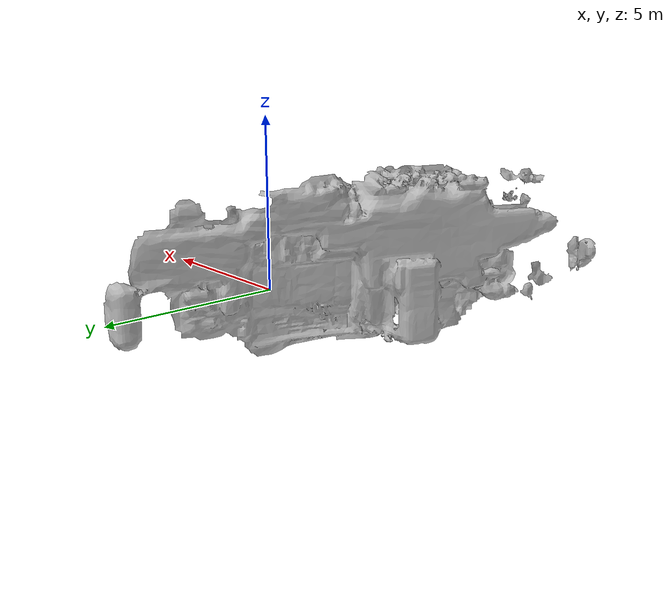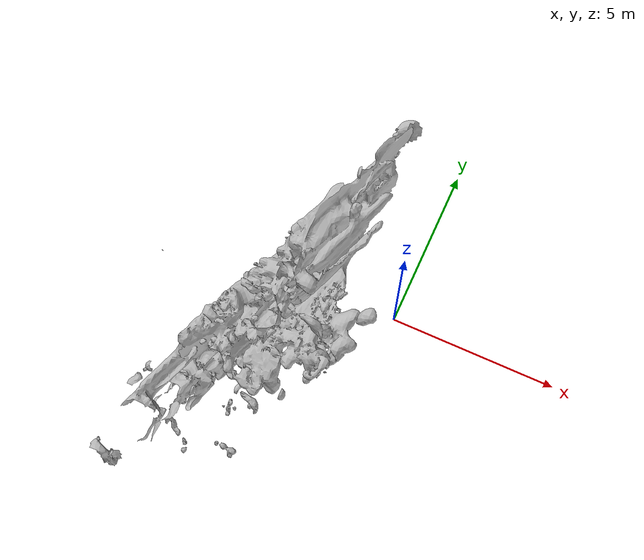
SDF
<?xml version="1.0"?>
<sdf version="1.6">
  <model name="my_scan_model">
    <static>true</static>
    <link name="link">
      <collision name="collision">
        <geometry>
          <mesh>
            <uri>model://my_scan_model/meshes/scan_mesh.obj</uri>
          </mesh>
        </geometry>
      </collision>
      <visual name="visual">
        <geometry>
          <mesh>
            <uri>model://my_scan_model/meshes/scan_mesh.obj</uri>
          </mesh>
        </geometry>
      </visual>
    </link>
  </model>
</sdf>
